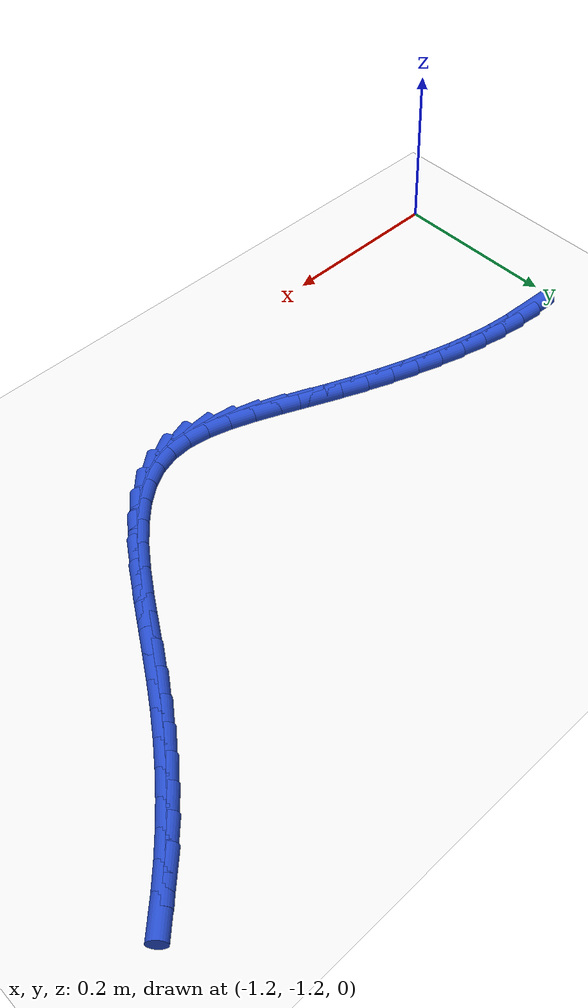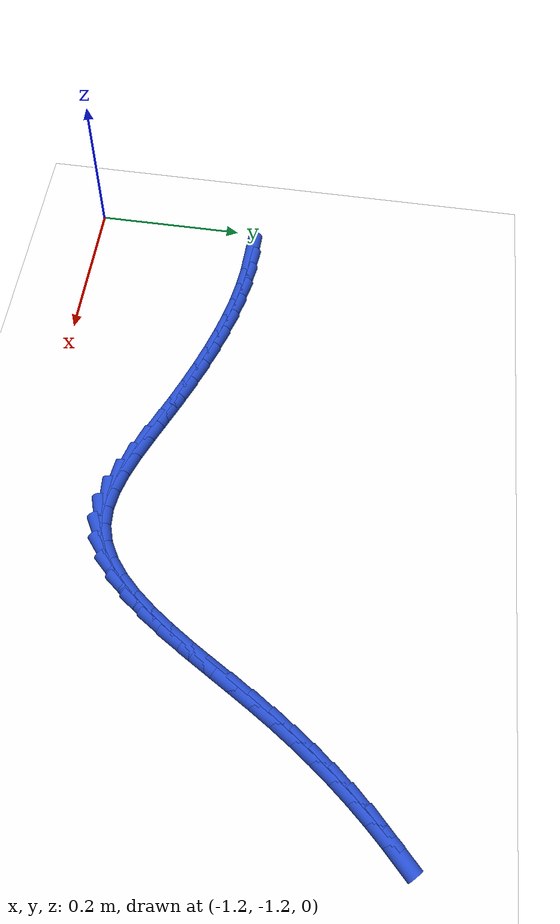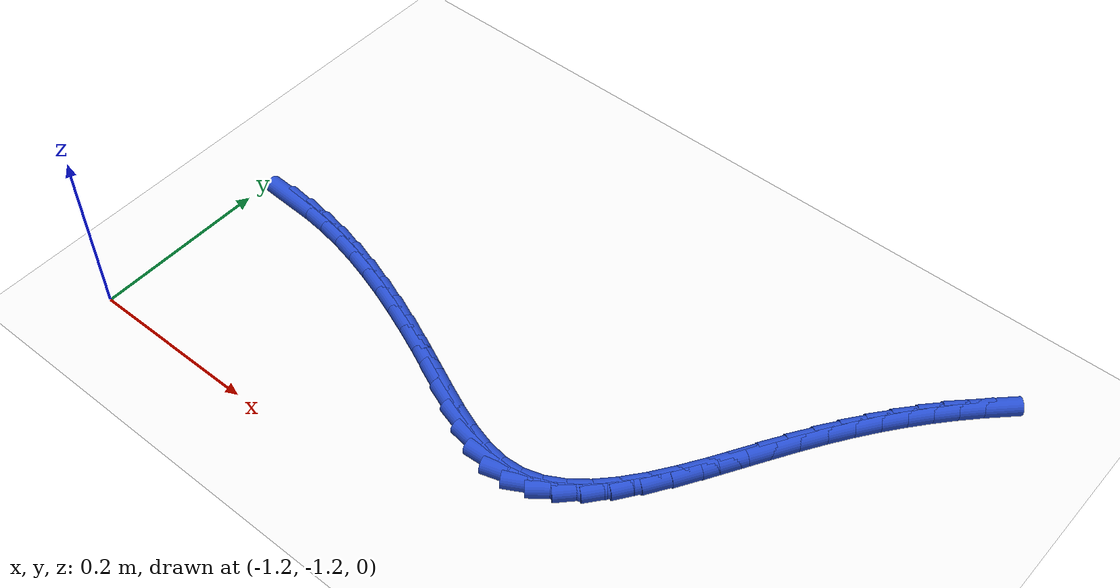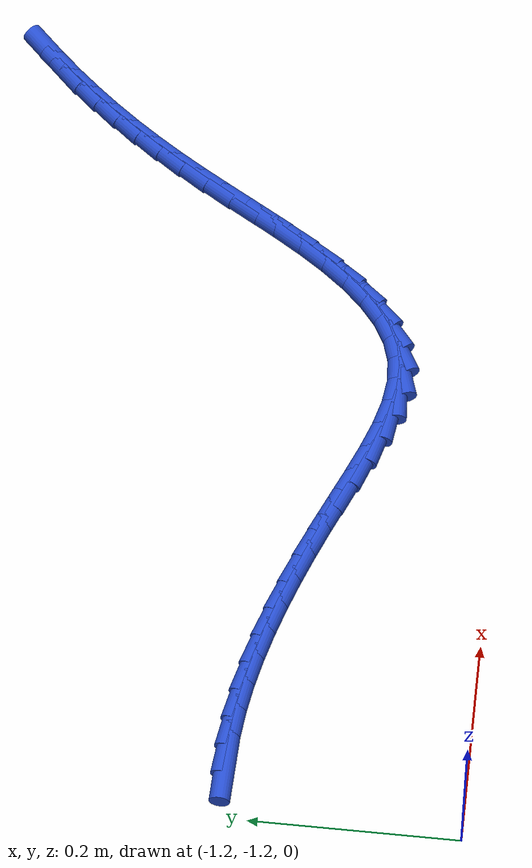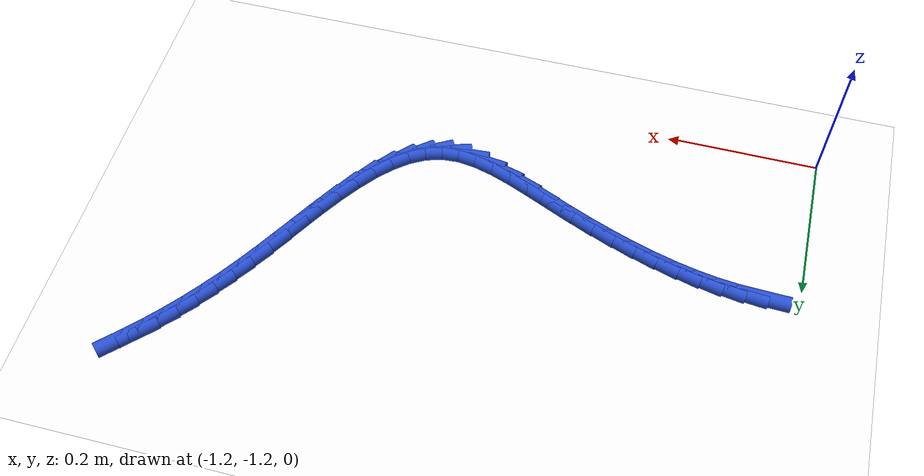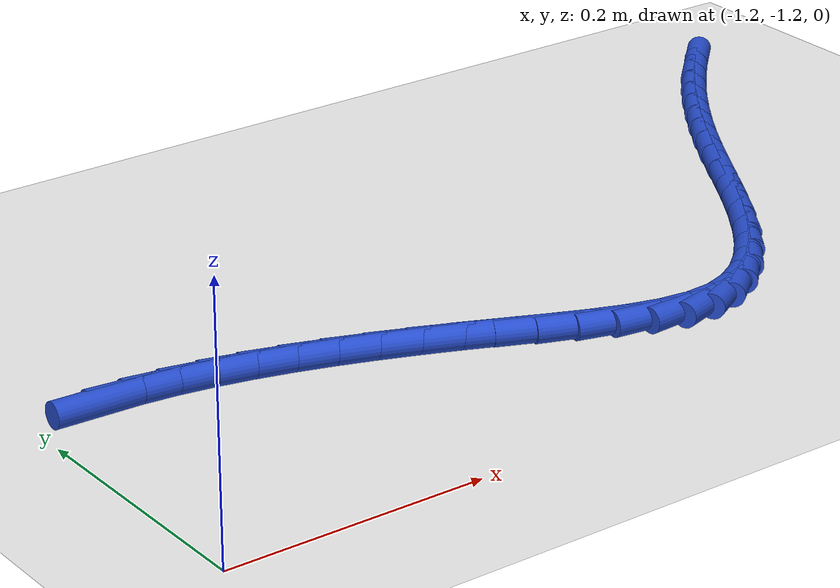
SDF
<sdf version="1.6">
 <world name="default">
  <model name="ground_plane">
   <static>1</static>
   <link name="link">
    <collision name="collision">
     <geometry><plane><normal>0 0 1</normal><size>100 100</size></plane></geometry>
     <surface><friction><ode><mu>100</mu><mu2>50</mu2></ode></friction></surface>
    </collision>
    <visual name="visual">
     <cast_shadows>0</cast_shadows>
     <geometry><plane><normal>0 0 1</normal><size>100 100</size></plane></geometry>
     <material>
      <script><uri>file://media/materials/scripts/gazebo.material</uri><name>Gazebo/WhiteGlow</name></script>
     </material>
    </visual>
   </link>
  </model>
  <model name="line">
   <link name="link_205">
    <pose>-1.1477687561375645 -0.9743334518309644 0.01 0 1.57 -0.042111759719920684</pose>
    <collision name="collision">
     <geometry><cylinder><radius>0.01</radius><length>0.08</length></cylinder></geometry>
    </collision>
    <visual name="visual">
     <material>
      <script><name>Gazebo/Blue</name><uri>file://media/materials/scripts/gazebo.material</uri></script>
     </material>
     <geometry><cylinder><radius>0.01</radius><length>0.08</length></cylinder></geometry>
    </visual>
   </link>
   <link name="link_206">
    <pose>-1.1206487097892341 -0.9754762003030863 0.01 0 1.57 -0.10962878252326075</pose>
    <collision name="collision">
     <geometry><cylinder><radius>0.01</radius><length>0.08</length></cylinder></geometry>
    </collision>
    <visual name="visual">
     <material>
      <script><name>Gazebo/Blue</name><uri>file://media/materials/scripts/gazebo.material</uri></script>
     </material>
     <geometry><cylinder><radius>0.01</radius><length>0.08</length></cylinder></geometry>
    </visual>
   </link>
   <link name="link_207">
    <pose>-1.0931107329050436 -0.9785073080149541 0.01 0 1.57 -0.16901678662065073</pose>
    <collision name="collision">
     <geometry><cylinder><radius>0.01</radius><length>0.08</length></cylinder></geometry>
    </collision>
    <visual name="visual">
     <material>
      <script><name>Gazebo/Blue</name><uri>file://media/materials/scripts/gazebo.material</uri></script>
     </material>
     <geometry><cylinder><radius>0.01</radius><length>0.08</length></cylinder></geometry>
    </visual>
   </link>
   <link name="link_208">
    <pose>-1.06522521929497 -0.9832658261264298 0.01 0 1.57 -0.22092175207563958</pose>
    <collision name="collision">
     <geometry><cylinder><radius>0.01</radius><length>0.08</length></cylinder></geometry>
    </collision>
    <visual name="visual">
     <material>
      <script><name>Gazebo/Blue</name><uri>file://media/materials/scripts/gazebo.material</uri></script>
     </material>
     <geometry><cylinder><radius>0.01</radius><length>0.08</length></cylinder></geometry>
    </visual>
   </link>
   <link name="link_209">
    <pose>-1.037062562768986 -0.9895908057973759 0.01 0 1.57 -0.2660348991762628</pose>
    <collision name="collision">
     <geometry><cylinder><radius>0.01</radius><length>0.08</length></cylinder></geometry>
    </collision>
    <visual name="visual">
     <material>
      <script><name>Gazebo/Blue</name><uri>file://media/materials/scripts/gazebo.material</uri></script>
     </material>
     <geometry><cylinder><radius>0.01</radius><length>0.08</length></cylinder></geometry>
    </visual>
   </link>
   <link name="link_210">
    <pose>-1.0086931571370692 -0.997321298187655 0.01 0 1.57 -0.30502491564210144</pose>
    <collision name="collision">
     <geometry><cylinder><radius>0.01</radius><length>0.08</length></cylinder></geometry>
    </collision>
    <visual name="visual">
     <material>
      <script><name>Gazebo/Blue</name><uri>file://media/materials/scripts/gazebo.material</uri></script>
     </material>
     <geometry><cylinder><radius>0.01</radius><length>0.08</length></cylinder></geometry>
    </visual>
   </link>
   <link name="link_211">
    <pose>-0.9801873962091929 -1.0062963544571295 0.01 0 1.57 -0.3384998202889494</pose>
    <collision name="collision">
     <geometry><cylinder><radius>0.01</radius><length>0.08</length></cylinder></geometry>
    </collision>
    <visual name="visual">
     <material>
      <script><name>Gazebo/Blue</name><uri>file://media/materials/scripts/gazebo.material</uri></script>
     </material>
     <geometry><cylinder><radius>0.01</radius><length>0.08</length></cylinder></geometry>
    </visual>
   </link>
   <link name="link_212">
    <pose>-0.9516156737953336 -1.0163550257656615 0.01 0 1.57 -0.36698836281089925</pose>
    <collision name="collision">
     <geometry><cylinder><radius>0.01</radius><length>0.08</length></cylinder></geometry>
    </collision>
    <visual name="visual">
     <material>
      <script><name>Gazebo/Blue</name><uri>file://media/materials/scripts/gazebo.material</uri></script>
     </material>
     <geometry><cylinder><radius>0.01</radius><length>0.08</length></cylinder></geometry>
    </visual>
   </link>
   <link name="link_213">
    <pose>-0.9230483837054655 -1.0273363632731143 0.01 0 1.57 -0.39093301217784454</pose>
    <collision name="collision">
     <geometry><cylinder><radius>0.01</radius><length>0.08</length></cylinder></geometry>
    </collision>
    <visual name="visual">
     <material>
      <script><name>Gazebo/Blue</name><uri>file://media/materials/scripts/gazebo.material</uri></script>
     </material>
     <geometry><cylinder><radius>0.01</radius><length>0.08</length></cylinder></geometry>
    </visual>
   </link>
   <link name="link_214">
    <pose>-0.8945559197495648 -1.0390794181393492 0.01 0 1.57 -0.41065637941270566</pose>
    <collision name="collision">
     <geometry><cylinder><radius>0.01</radius><length>0.08</length></cylinder></geometry>
    </collision>
    <visual name="visual">
     <material>
      <script><name>Gazebo/Blue</name><uri>file://media/materials/scripts/gazebo.material</uri></script>
     </material>
     <geometry><cylinder><radius>0.01</radius><length>0.08</length></cylinder></geometry>
    </visual>
   </link>
   <link name="link_215">
    <pose>-0.8662088782270069 -1.0514220545048054 0.01 0 1.57 -0.41973369552771633</pose>
    <collision name="collision">
     <geometry><cylinder><radius>0.01</radius><length>0.08</length></cylinder></geometry>
    </collision>
    <visual name="visual">
     <material>
      <script><name>Gazebo/Blue</name><uri>file://media/materials/scripts/gazebo.material</uri></script>
     </material>
     <geometry><cylinder><radius>0.01</radius><length>0.08</length></cylinder></geometry>
    </visual>
   </link>
   <link name="link_216">
    <pose>-0.8381196813182236 -1.0639569477095012 0.01 0 1.57 -0.4029372166024537</pose>
    <collision name="collision">
     <geometry><cylinder><radius>0.01</radius><length>0.08</length></cylinder></geometry>
    </collision>
    <visual name="visual">
     <material>
      <script><name>Gazebo/Blue</name><uri>file://media/materials/scripts/gazebo.material</uri></script>
     </material>
     <geometry><cylinder><radius>0.01</radius><length>0.08</length></cylinder></geometry>
    </visual>
   </link>
   <link name="link_217">
    <pose>-0.8104935348674694 -1.0757328630871212 0.01 0 1.57 -0.3551235694361118</pose>
    <collision name="collision">
     <geometry><cylinder><radius>0.01</radius><length>0.08</length></cylinder></geometry>
    </collision>
    <visual name="visual">
     <material>
      <script><name>Gazebo/Blue</name><uri>file://media/materials/scripts/gazebo.material</uri></script>
     </material>
     <geometry><cylinder><radius>0.01</radius><length>0.08</length></cylinder></geometry>
    </visual>
   </link>
   <link name="link_218">
    <pose>-0.7835481163964519 -1.0857254553623863 0.01 0 1.57 -0.26915111726274926</pose>
    <collision name="collision">
     <geometry><cylinder><radius>0.01</radius><length>0.08</length></cylinder></geometry>
    </collision>
    <visual name="visual">
     <material>
      <script><name>Gazebo/Blue</name><uri>file://media/materials/scripts/gazebo.material</uri></script>
     </material>
     <geometry><cylinder><radius>0.01</radius><length>0.08</length></cylinder></geometry>
    </visual>
   </link>
   <link name="link_219">
    <pose>-0.757501103426881 -1.092910379260013 0.01 0 1.57 -0.1336858319626289</pose>
    <collision name="collision">
     <geometry><cylinder><radius>0.01</radius><length>0.08</length></cylinder></geometry>
    </collision>
    <visual name="visual">
     <material>
      <script><name>Gazebo/Blue</name><uri>file://media/materials/scripts/gazebo.material</uri></script>
     </material>
     <geometry><cylinder><radius>0.01</radius><length>0.08</length></cylinder></geometry>
    </visual>
   </link>
   <link name="link_220">
    <pose>-0.7325701734804642 -1.0962632895047206 0.01 0 1.57 0.06353339010097747</pose>
    <collision name="collision">
     <geometry><cylinder><radius>0.01</radius><length>0.08</length></cylinder></geometry>
    </collision>
    <visual name="visual">
     <material>
      <script><name>Gazebo/Blue</name><uri>file://media/materials/scripts/gazebo.material</uri></script>
     </material>
     <geometry><cylinder><radius>0.01</radius><length>0.08</length></cylinder></geometry>
    </visual>
   </link>
   <link name="link_221">
    <pose>-0.7089725200866209 -1.0947620301020564 0.01 0 1.57 0.3020106452889257</pose>
    <collision name="collision">
     <geometry><cylinder><radius>0.01</radius><length>0.08</length></cylinder></geometry>
    </collision>
    <visual name="visual">
     <material>
      <script><name>Gazebo/Blue</name><uri>file://media/materials/scripts/gazebo.material</uri></script>
     </material>
     <geometry><cylinder><radius>0.01</radius><length>0.08</length></cylinder></geometry>
    </visual>
   </link>
   <link name="link_222">
    <pose>-0.6868200628792 -1.0878606388432686 0.01 0 1.57 0.5146221029005044</pose>
    <collision name="collision">
     <geometry><cylinder><radius>0.01</radius><length>0.08</length></cylinder></geometry>
    </collision>
    <visual name="visual">
     <material>
      <script><name>Gazebo/Blue</name><uri>file://media/materials/scripts/gazebo.material</uri></script>
     </material>
     <geometry><cylinder><radius>0.01</radius><length>0.08</length></cylinder></geometry>
    </visual>
   </link>
   <link name="link_223">
    <pose>-0.6659885178155694 -1.076081592397971 0.01 0 1.57 0.6825988957315254</pose>
    <collision name="collision">
     <geometry><cylinder><radius>0.01</radius><length>0.08</length></cylinder></geometry>
    </collision>
    <visual name="visual">
     <material>
      <script><name>Gazebo/Blue</name><uri>file://media/materials/scripts/gazebo.material</uri></script>
     </material>
     <geometry><cylinder><radius>0.01</radius><length>0.08</length></cylinder></geometry>
    </visual>
   </link>
   <link name="link_224">
    <pose>-0.6463214347851234 -1.06009286676964 0.01 0 1.57 0.8082108878180277</pose>
    <collision name="collision">
     <geometry><cylinder><radius>0.01</radius><length>0.08</length></cylinder></geometry>
    </collision>
    <visual name="visual">
     <material>
      <script><name>Gazebo/Blue</name><uri>file://media/materials/scripts/gazebo.material</uri></script>
     </material>
     <geometry><cylinder><radius>0.01</radius><length>0.08</length></cylinder></geometry>
    </visual>
   </link>
   <link name="link_225">
    <pose>-0.627662363677259 -1.0405624379617537 0.01 0 1.57 0.8992154006524593</pose>
    <collision name="collision">
     <geometry><cylinder><radius>0.01</radius><length>0.08</length></cylinder></geometry>
    </collision>
    <visual name="visual">
     <material>
      <script><name>Gazebo/Blue</name><uri>file://media/materials/scripts/gazebo.material</uri></script>
     </material>
     <geometry><cylinder><radius>0.01</radius><length>0.08</length></cylinder></geometry>
    </visual>
   </link>
   <link name="link_226">
    <pose>-0.6098548543813711 -1.018158281977788 0.01 0 1.57 0.9632007660402645</pose>
    <collision name="collision">
     <geometry><cylinder><radius>0.01</radius><length>0.08</length></cylinder></geometry>
    </collision>
    <visual name="visual">
     <material>
      <script><name>Gazebo/Blue</name><uri>file://media/materials/scripts/gazebo.material</uri></script>
     </material>
     <geometry><cylinder><radius>0.01</radius><length>0.08</length></cylinder></geometry>
    </visual>
   </link>
   <link name="link_227">
    <pose>-0.5927424567868544 -0.9935483748212187 0.01 0 1.57 1.0058575123262186</pose>
    <collision name="collision">
     <geometry><cylinder><radius>0.01</radius><length>0.08</length></cylinder></geometry>
    </collision>
    <visual name="visual">
     <material>
      <script><name>Gazebo/Blue</name><uri>file://media/materials/scripts/gazebo.material</uri></script>
     </material>
     <geometry><cylinder><radius>0.01</radius><length>0.08</length></cylinder></geometry>
    </visual>
   </link>
   <link name="link_228">
    <pose>-0.5761687207831065 -0.9674006924955248 0.01 0 1.57 1.0308931110985566</pose>
    <collision name="collision">
     <geometry><cylinder><radius>0.01</radius><length>0.08</length></cylinder></geometry>
    </collision>
    <visual name="visual">
     <material>
      <script><name>Gazebo/Blue</name><uri>file://media/materials/scripts/gazebo.material</uri></script>
     </material>
     <geometry><cylinder><radius>0.01</radius><length>0.08</length></cylinder></geometry>
    </visual>
   </link>
   <link name="link_229">
    <pose>-0.5599771962595211 -0.940383211004181 0.01 0 1.57 1.040317584385692</pose>
    <collision name="collision">
     <geometry><cylinder><radius>0.01</radius><length>0.08</length></cylinder></geometry>
    </collision>
    <visual name="visual">
     <material>
      <script><name>Gazebo/Blue</name><uri>file://media/materials/scripts/gazebo.material</uri></script>
     </material>
     <geometry><cylinder><radius>0.01</radius><length>0.08</length></cylinder></geometry>
    </visual>
   </link>
   <link name="link_230">
    <pose>-0.5440114331054952 -0.9131639063506657 0.01 0 1.57 1.034659930970317</pose>
    <collision name="collision">
     <geometry><cylinder><radius>0.01</radius><length>0.08</length></cylinder></geometry>
    </collision>
    <visual name="visual">
     <material>
      <script><name>Gazebo/Blue</name><uri>file://media/materials/scripts/gazebo.material</uri></script>
     </material>
     <geometry><cylinder><radius>0.01</radius><length>0.08</length></cylinder></geometry>
    </visual>
   </link>
   <link name="link_231">
    <pose>-0.5281149812104234 -0.8864107545384545 0.01 0 1.57 1.0136274318688754</pose>
    <collision name="collision">
     <geometry><cylinder><radius>0.01</radius><length>0.08</length></cylinder></geometry>
    </collision>
    <visual name="visual">
     <material>
      <script><name>Gazebo/Blue</name><uri>file://media/materials/scripts/gazebo.material</uri></script>
     </material>
     <geometry><cylinder><radius>0.01</radius><length>0.08</length></cylinder></geometry>
    </visual>
   </link>
   <link name="link_232">
    <pose>-0.5121346267826313 -0.8607606240204562 0.01 0 1.57 0.9843167967407362</pose>
    <collision name="collision">
     <geometry><cylinder><radius>0.01</radius><length>0.08</length></cylinder></geometry>
    </collision>
    <visual name="visual">
     <material>
      <script><name>Gazebo/Blue</name><uri>file://media/materials/scripts/gazebo.material</uri></script>
     </material>
     <geometry><cylinder><radius>0.01</radius><length>0.08</length></cylinder></geometry>
    </visual>
   </link>
   <link name="link_233">
    <pose>-0.4959618107515499 -0.8364211613386972 0.01 0 1.57 0.9529255116491258</pose>
    <collision name="collision">
     <geometry><cylinder><radius>0.01</radius><length>0.08</length></cylinder></geometry>
    </collision>
    <visual name="visual">
     <material>
      <script><name>Gazebo/Blue</name><uri>file://media/materials/scripts/gazebo.material</uri></script>
     </material>
     <geometry><cylinder><radius>0.01</radius><length>0.08</length></cylinder></geometry>
    </visual>
   </link>
   <link name="link_234">
    <pose>-0.47952051768030296 -0.8132872030949937 0.01 0 1.57 0.9199456708739591</pose>
    <collision name="collision">
     <geometry><cylinder><radius>0.01</radius><length>0.08</length></cylinder></geometry>
    </collision>
    <visual name="visual">
     <material>
      <script><name>Gazebo/Blue</name><uri>file://media/materials/scripts/gazebo.material</uri></script>
     </material>
     <geometry><cylinder><radius>0.01</radius><length>0.08</length></cylinder></geometry>
    </visual>
   </link>
   <link name="link_235">
    <pose>-0.4627354699742834 -0.7912464937391637 0.01 0 1.57 0.8858237878573337</pose>
    <collision name="collision">
     <geometry><cylinder><radius>0.01</radius><length>0.08</length></cylinder></geometry>
    </collision>
    <visual name="visual">
     <material>
      <script><name>Gazebo/Blue</name><uri>file://media/materials/scripts/gazebo.material</uri></script>
     </material>
     <geometry><cylinder><radius>0.01</radius><length>0.08</length></cylinder></geometry>
    </visual>
   </link>
   <link name="link_236">
    <pose>-0.44553139003888403 -0.7701867777210251 0.01 0 1.57 0.8510894670441261</pose>
    <collision name="collision">
     <geometry><cylinder><radius>0.01</radius><length>0.08</length></cylinder></geometry>
    </collision>
    <visual name="visual">
     <material>
      <script><name>Gazebo/Blue</name><uri>file://media/materials/scripts/gazebo.material</uri></script>
     </material>
     <geometry><cylinder><radius>0.01</radius><length>0.08</length></cylinder></geometry>
    </visual>
   </link>
   <link name="link_237">
    <pose>-0.42783300027949983 -0.7499957994903981 0.01 0 1.57 0.8163284100992961</pose>
    <collision name="collision">
     <geometry><cylinder><radius>0.01</radius><length>0.08</length></cylinder></geometry>
    </collision>
    <visual name="visual">
     <material>
      <script><name>Gazebo/Blue</name><uri>file://media/materials/scripts/gazebo.material</uri></script>
     </material>
     <geometry><cylinder><radius>0.01</radius><length>0.08</length></cylinder></geometry>
    </visual>
   </link>
   <link name="link_238">
    <pose>-0.409565023101523 -0.7305613034971004 0.01 0 1.57 0.7821471730060435</pose>
    <collision name="collision">
     <geometry><cylinder><radius>0.01</radius><length>0.08</length></cylinder></geometry>
    </collision>
    <visual name="visual">
     <material>
      <script><name>Gazebo/Blue</name><uri>file://media/materials/scripts/gazebo.material</uri></script>
     </material>
     <geometry><cylinder><radius>0.01</radius><length>0.08</length></cylinder></geometry>
    </visual>
   </link>
  </model>
 </world>
</sdf>
